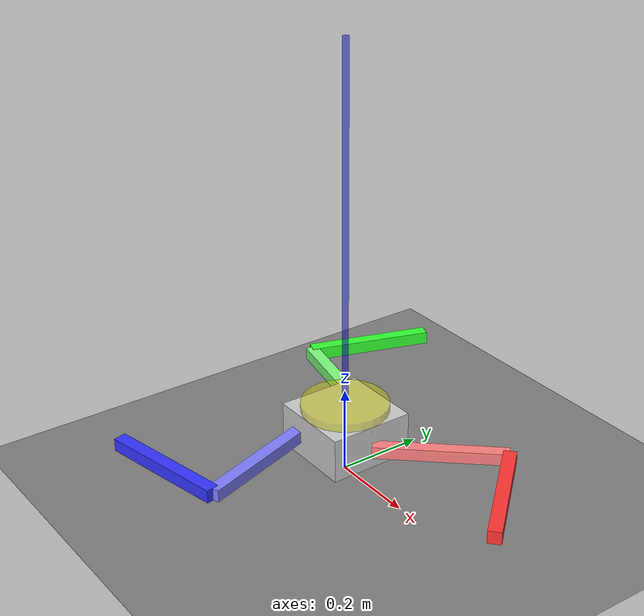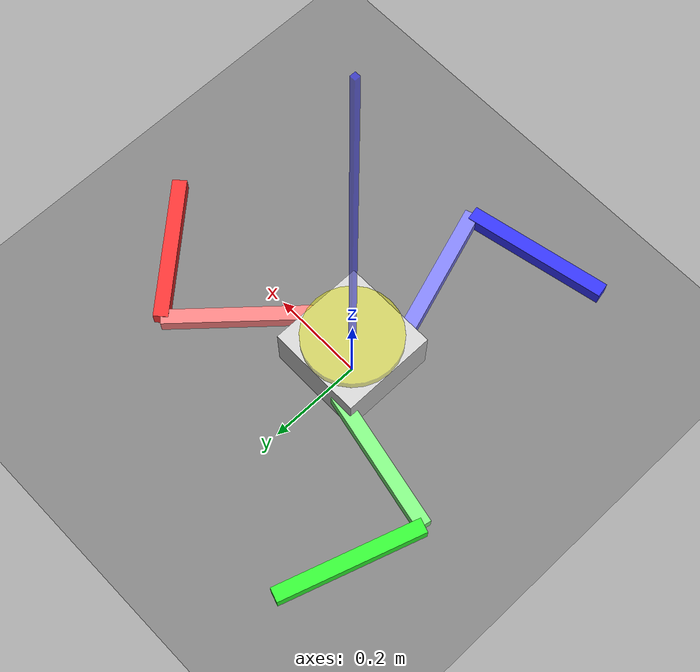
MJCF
<?xml version="1.0" ?>
<mujoco model="scene3">
    <compiler angle="radian" coordinate="local"/>
    <option timestep="0.001" iterations="100" o_solref="0.001 1" o_solimp="0.99 0.96 0.001" cone="elliptic" jacobian="dense">
        <flag override="enable" />
    </option>

    <size nconmax="16" njmax="16" />

    <worldbody>
        <geom name="geom_ground" type="plane" size="1.0 1.0 0.032418325543403625 " pos="0.0 0.0 0.0" quat="1.0 0.0 0.0 0.0" mass="1.0" rgba="0.5 0.5 0.5 1" contype="1" conaffinity="1"/>
        <body name="leg0_body0" pos="0.40000003576278687 0.11180341988801956 0.10000000149011612" quat="0.9341723322868347 0.0 0.0 0.3568221628665924">
            <joint name="leg0_joint0" type="hinge" axis="0.0 0.0 1.0" pos="-2.9802322387695312e-08 -0.15000003576278687 -7.450580596923828e-09" stiffness="0.0" damping="1.0" springref="0.0" limited="false"/>
            <geom name="leg0_geom0" type="box" size="0.1499999761581421 0.015 0.015000001527369022 " pos="-7.450580596923828e-09 -7.450580596923828e-09 -7.450580596923828e-09" quat="0.7071068286895752 0.0 0.0 0.7071067094802856" mass="1.0" rgba="1.0 0.2 0.2 1.0" contype="0" conaffinity="0"/>
            <body name="leg0_body1" pos="-0.14905795454978943 0.13321508467197418 -7.450580596923828e-09" quat="0.66637122631073 0.0 0.0 0.7456201910972595">
                <body name="endeffector" pos="0.07482634484767914 0.2166074514389038 0.0038357898592948914" quat="0.3564518094062805 -0.0 -0.0 -0.9343138337135315">
                    <geom name="geom_endeffector" type="box" size="0.1 0.1 0.051 " pos="0.0 0.0 0.0" quat="1.0 0.0 0.0 0.0" mass="1.0" rgba="0.8 0.8 0.8 1" contype="1" conaffinity="1"/>
                    <geom name="geom_endeffector_cylinder" type="cylinder" size="0.1 0.02" pos="0.0 0.0 0.05" quat="1.0 0.0 0.0 0.0" mass="0.1" rgba="0.8 0.8 0.0 0.5" contype="0" conaffinity="0"/>
                    <joint name="leg0_joint2" type="hinge" axis="0.0 0.0 1.0" pos="0.1001773327589035 -0.00015851855278015137 -0.0038357824087142944" stiffness="0.0" damping="0.0" springref="0.0" limited="false"/>
                </body>
                <joint name="leg0_joint1" type="hinge" axis="0.0 0.0 1.0" pos="4.470348358154297e-08 -0.15000005066394806 7.450580596923828e-09" stiffness="0.0" damping="0.0" springref="0.0" limited="false"/>
                <geom name="leg0_geom1" type="box" size="0.1499999761581421 0.015 0.014 " pos="0.0 7.450580596923828e-09 7.450580596923828e-09" quat="0.7071067094802856 0.0 0.0 0.7071068286895752" mass="1.0" rgba="1.0 0.5 0.5 1.0" contype="0" conaffinity="0"/>
            </body>
        </body>
        <body name="leg1_body0" pos="-0.2968246340751648 0.2905084788799286 0.09999999403953552" quat="0.15806910395622253 0.0 0.0 0.9874280691146851">
            <joint name="leg1_joint0" type="hinge" axis="0.0 0.0 1.0" pos="-2.9802322387695312e-08 -0.15000000596046448 0.0" stiffness="0.0" damping="1.0" springref="0.0" limited="false"/>
            <geom name="leg1_geom0" type="box" size="0.1499999761581421 0.015 0.015000001527369022 " pos="-1.4901161193847656e-08 -7.450580596923828e-09 0.0" quat="0.7071067094802856 0.0 0.0 0.7071068286895752" mass="1.0" rgba="0.2 1.0 0.2 1.0" contype="0" conaffinity="0"/>
            <body name="leg1_body1" pos="-0.1490580141544342 0.13321509957313538 0.0" quat="0.66637122631073 0.0 0.0 0.7456201910972595">
                <joint name="leg1_joint1" type="hinge" axis="0.0 0.0 1.0" pos="5.21540641784668e-08 -0.15000009536743164 0.0" stiffness="0.0" damping="0.0" springref="0.0" limited="false"/>
                <geom name="leg1_geom1" type="box" size="0.1499999761581421 0.015 0.014" pos="0.0 -5.587935447692871e-09 0.0" quat="0.7071067094802856 0.0 0.0 0.7071068286895752" mass="1.0" rgba="0.5 1.0 0.5 1.0" contype="0" conaffinity="0"/>
            </body>
        </body>
        <body name="leg2_body0" pos="-0.10317538678646088 -0.40231195092201233 0.09999998658895493" quat="0.7761032581329346 0.0 0.0 -0.6306058764457703">
            <joint name="leg2_joint0" type="hinge" axis="0.0 0.0 1.0" pos="-2.9802322387695312e-08 -0.15000002086162567 0.0" stiffness="0.0" damping="1.0" springref="0.0" limited="false"/>
            <geom name="leg2_geom0" type="box" size="0.1499999761581421 0.015 0.015000001527369022 " pos="-1.1175870895385742e-08 0.0 0.0" quat="0.7071067094802856 0.0 0.0 0.7071068286895752" mass="1.0" rgba="0.2 0.2 1.0 1.0" contype="0" conaffinity="0"/>
            <body name="leg2_body1" pos="-0.1490580439567566 0.13321512937545776 0.0" quat="0.66637122631073 0.0 0.0 0.7456201910972595">
                <joint name="leg2_joint1" type="hinge" axis="0.0 0.0 1.0" pos="1.862645149230957e-08 -0.15000008046627045 0.0" stiffness="0.0" damping="0.0" springref="0.0" limited="false"/>
                <geom name="leg2_geom1" type="box" size="0.1499999761581421 0.015 0.014 " pos="1.3969838619232178e-09 6.984919309616089e-09 0.0" quat="0.7071065902709961 0.0 0.0 0.7071070671081543" mass="1.0" rgba="0.5 0.5 1.0 1.0" contype="0" conaffinity="0"/>
            </body>
        </body>
        <light directional="true" cutoff="4" exponent="20" diffuse="1 1 1" specular="0 0 0" pos="0.9 0.3 2.5" dir="-0.9 -0.3 -2.5"/>

        <geom type="box" size="0.005 0.005 .5" pos="0.0 0.0 .5" quat="1.0 0.0 0.0 0.0" mass="1.0" rgba="0.0 0.0 1.0 0.5" contype="0" conaffinity="0"/>
    </worldbody>
    <actuator>
        <position name="act_leg0_joint0" joint="leg0_joint0" ctrllimited="false" forcelimited="false" kp="10.0"/>
        <position name="act_leg1_joint0" joint="leg1_joint0" ctrllimited="false" forcelimited="false" kp="10.0"/>
        <position name="act_leg2_joint0" joint="leg2_joint0" ctrllimited="false" forcelimited="false" kp="10.0"/>
    </actuator>
    <equality>
        <connect body1="endeffector" body2="leg1_body1" anchor="-0.04995138943195343 0.08683536946773529 -0.0038357898592948914"/>
        <connect body1="endeffector" body2="leg2_body1" anchor="-0.050225939601659775 -0.08667685091495514 -0.0038357973098754883"/>
    </equality>
    <sensor/>
</mujoco>
